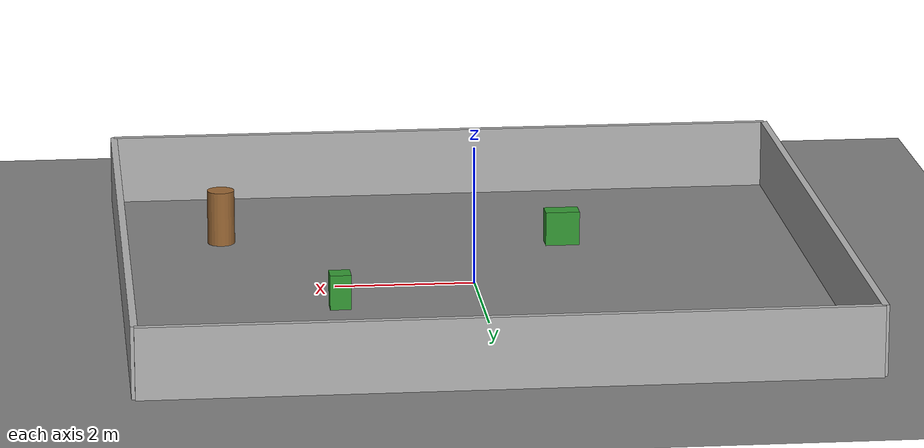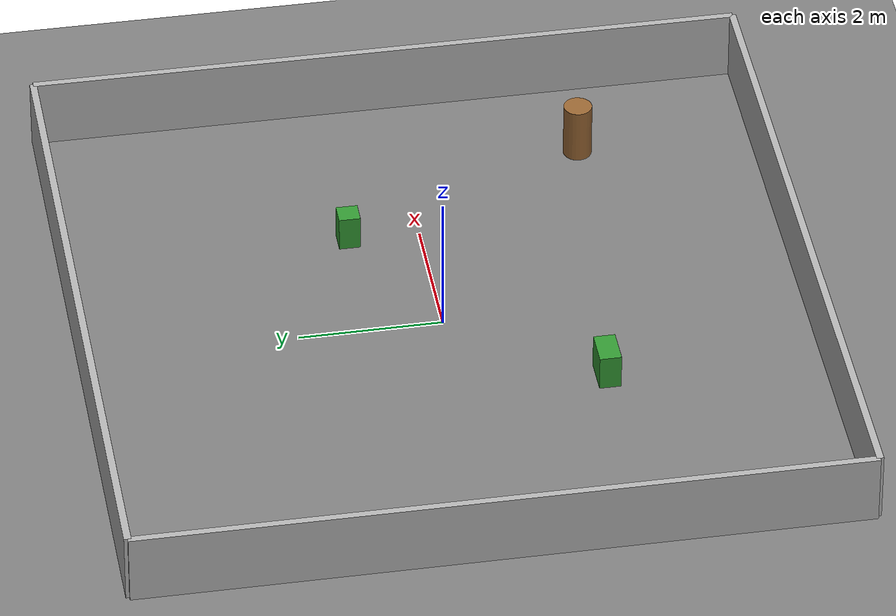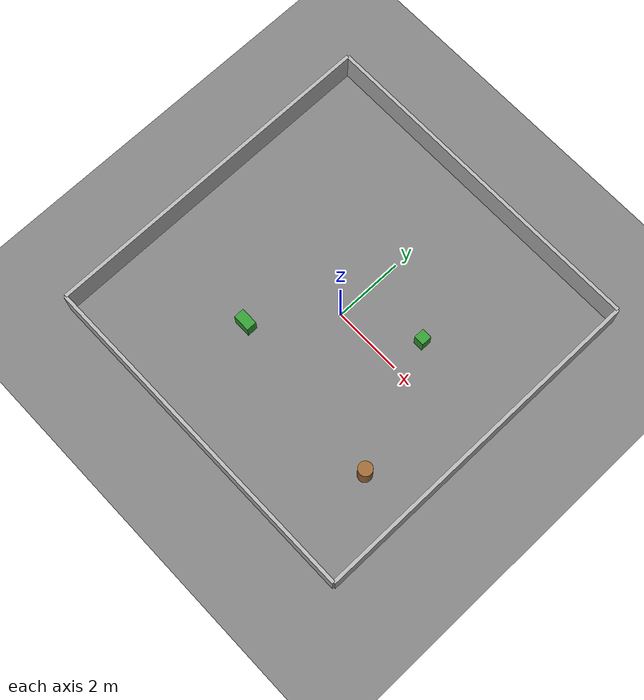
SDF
<?xml version="1.0" ?>
<sdf version="1.10">
  <world name="rover_validation_world">

    <physics name="default_physics" type="ode">
      <real_time_factor>1.0</real_time_factor>
      <real_time_update_rate>1000</real_time_update_rate>
      <max_step_size>0.001</max_step_size>
    </physics>

    <plugin filename="gz-sim-physics-system"
            name="gz::sim::systems::Physics"/>
    <plugin filename="gz-sim-user-commands-system"
            name="gz::sim::systems::UserCommands"/>
    <plugin filename="gz-sim-scene-broadcaster-system"
            name="gz::sim::systems::SceneBroadcaster"/>
    <plugin filename="gz-sim-sensors-system"
            name="gz::sim::systems::Sensors">
      <render_engine>ogre2</render_engine>
    </plugin>
    <plugin filename="gz-sim-imu-system"
            name="gz::sim::systems::Imu"/>
    <plugin filename="gz-sim-contact-system"
            name="gz::sim::systems::Contact"/>

    <gravity>0 0 -9.81</gravity>
    <magnetic_field>5.5645e-6 22.8758e-6 -42.3884e-6</magnetic_field>
    <atmosphere type="adiabatic"/>

    <scene>
      <ambient>0.4 0.4 0.4 1.0</ambient>
      <background>0.7 0.7 0.7 1.0</background>
      <shadows>false</shadows>
    </scene>

    <light type="directional" name="sun">
      <pose>0 0 10 0 0 0</pose>
      <diffuse>0.8 0.8 0.8 1.0</diffuse>
      <specular>0.2 0.2 0.2 1.0</specular>
      <direction>0.5 0.1 -0.9</direction>
      <cast_shadows>false</cast_shadows>
    </light>

    <!-- Ground plane. -->
    <model name="ground_plane">
      <static>true</static>
      <link name="link">
        <collision name="collision">
          <geometry>
            <plane>
              <normal>0 0 1</normal>
              <size>20 20</size>
            </plane>
          </geometry>
          <surface>
            <friction>
              <ode>
                <mu>1.0</mu>
                <mu2>1.0</mu2>
              </ode>
            </friction>
          </surface>
        </collision>
        <visual name="visual">
          <geometry>
            <plane>
              <normal>0 0 1</normal>
              <size>20 20</size>
            </plane>
          </geometry>
          <material>
            <ambient>0.5 0.5 0.5 1</ambient>
            <diffuse>0.5 0.5 0.5 1</diffuse>
          </material>
        </visual>
      </link>
    </model>

    <!-- Bounding walls (10 m x 10 m room). -->
    <model name="wall_north">
      <static>true</static>
      <pose>0 5 0.5 0 0 0</pose>
      <link name="link">
        <collision name="collision">
          <geometry><box><size>10 0.1 1.0</size></box></geometry>
        </collision>
        <visual name="visual">
          <geometry><box><size>10 0.1 1.0</size></box></geometry>
          <material><ambient>0.7 0.7 0.7 1</ambient></material>
        </visual>
      </link>
    </model>
    <model name="wall_south">
      <static>true</static>
      <pose>0 -5 0.5 0 0 0</pose>
      <link name="link">
        <collision name="collision">
          <geometry><box><size>10 0.1 1.0</size></box></geometry>
        </collision>
        <visual name="visual">
          <geometry><box><size>10 0.1 1.0</size></box></geometry>
          <material><ambient>0.7 0.7 0.7 1</ambient></material>
        </visual>
      </link>
    </model>
    <model name="wall_east">
      <static>true</static>
      <pose>5 0 0.5 0 0 0</pose>
      <link name="link">
        <collision name="collision">
          <geometry><box><size>0.1 10 1.0</size></box></geometry>
        </collision>
        <visual name="visual">
          <geometry><box><size>0.1 10 1.0</size></box></geometry>
          <material><ambient>0.7 0.7 0.7 1</ambient></material>
        </visual>
      </link>
    </model>
    <model name="wall_west">
      <static>true</static>
      <pose>-5 0 0.5 0 0 0</pose>
      <link name="link">
        <collision name="collision">
          <geometry><box><size>0.1 10 1.0</size></box></geometry>
        </collision>
        <visual name="visual">
          <geometry><box><size>0.1 10 1.0</size></box></geometry>
          <material><ambient>0.7 0.7 0.7 1</ambient></material>
        </visual>
      </link>
    </model>

    <!-- Three small static obstacles. Positioned to remain inside the
         configured ODD and to give the LiDAR something stable to see. -->
    <model name="obstacle_a">
      <static>true</static>
      <pose>2.0 1.0 0.25 0 0 0</pose>
      <link name="link">
        <collision name="collision">
          <geometry><box><size>0.3 0.3 0.5</size></box></geometry>
        </collision>
        <visual name="visual">
          <geometry><box><size>0.3 0.3 0.5</size></box></geometry>
          <material><ambient>0.2 0.6 0.2 1</ambient></material>
        </visual>
      </link>
    </model>
    <model name="obstacle_b">
      <static>true</static>
      <pose>-1.5 -2.0 0.25 0 0 0</pose>
      <link name="link">
        <collision name="collision">
          <geometry><box><size>0.5 0.3 0.5</size></box></geometry>
        </collision>
        <visual name="visual">
          <geometry><box><size>0.5 0.3 0.5</size></box></geometry>
          <material><ambient>0.2 0.6 0.2 1</ambient></material>
        </visual>
      </link>
    </model>
    <model name="obstacle_c">
      <static>true</static>
      <pose>3.5 -2.5 0.4 0 0 0</pose>
      <link name="link">
        <collision name="collision">
          <geometry><cylinder><radius>0.20</radius><length>0.8</length></cylinder></geometry>
        </collision>
        <visual name="visual">
          <geometry><cylinder><radius>0.20</radius><length>0.8</length></cylinder></geometry>
          <material><ambient>0.6 0.4 0.2 1</ambient></material>
        </visual>
      </link>
    </model>

  </world>
</sdf>
